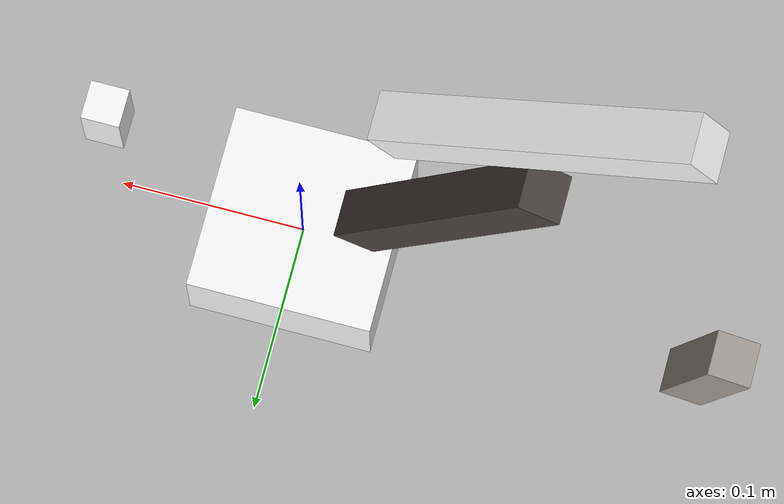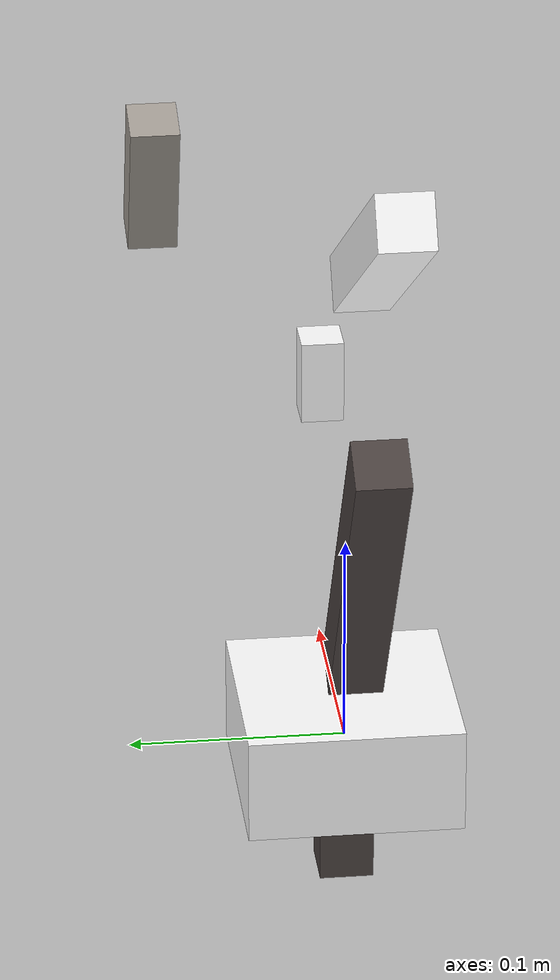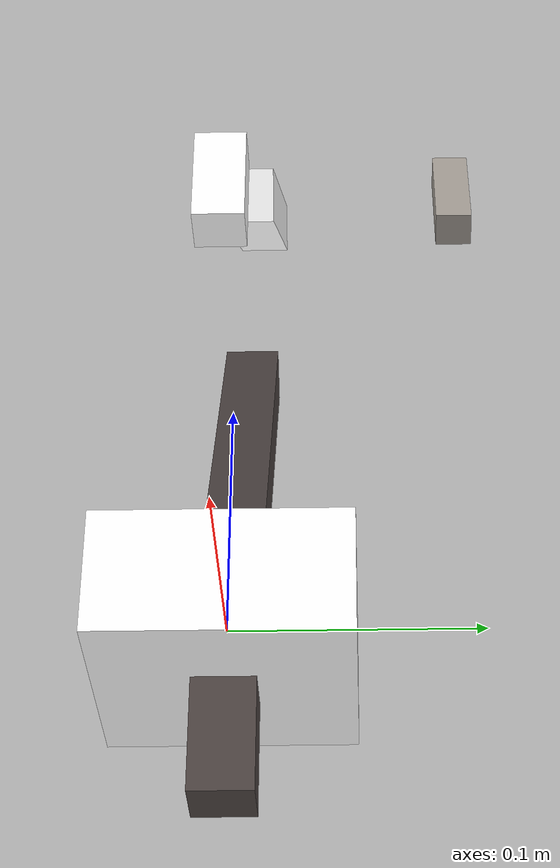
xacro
<?xml version="1.0"?>
<robot name="rc_arm_2" xmlns:xacro="http://www.ros.org/wiki/xacro">

  <xacro:arg name="use_mock_hardware" default="false"/>
  <xacro:arg name="hardware_config_file" default="$(find rc_arm_description)/config/rc_arm_2/rc_arm_2_hardware.real.yaml"/>

  <xacro:include filename="rc_arm_2_ros2_control.xacro"/>

  <material name="dark_gray">
    <color rgba="0.294117647058824 0.258823529411765 0.250980392156863 1.0"/>
  </material>
  <material name="light_gray">
    <color rgba="1.0 1.0 1.0 1.0"/>
  </material>
  <material name="d435_gray">
    <color rgba="0.64706 0.61961 0.58824 1.0"/>
  </material>

  <!-- Simplified cue-stick geometry for faster loading and lighter self-collision. -->
  <xacro:property name="base_size" value="0.10 0.10 0.05"/>
  <xacro:property name="l1_size" value="0.025 0.025 0.07"/>
  <xacro:property name="l2_size" value="0.025 0.025 0.18"/>
  <xacro:property name="l3_size" value="0.18 0.025 0.025"/>
  <xacro:property name="l4_size" value="0.04 0.02 0.02"/>
  <xacro:property name="camera_visual_size" value="0.06 0.02 0.02"/>

  <link name="world"/>

  <joint name="world_to_base_link" type="fixed">
    <origin xyz="0 0 0" rpy="0 0 0"/>
    <parent link="world"/>
    <child link="base_link"/>
  </joint>

  <link name="base_link">
    <inertial>
      <origin xyz="-0.00441433736643499 -0.0432311956776563 -0.068308183900563" rpy="0 0 0"/>
      <mass value="0.72407291102659"/>
      <inertia
        ixx="0.000998899624008477"
        ixy="-3.86015725416923E-05"
        ixz="-2.77589357014807E-10"
        iyy="0.000692512396214957"
        iyz="-8.20453007076033E-08"
        izz="0.00166922984591189"/>
    </inertial>
    <visual>
      <origin xyz="0 0 0" rpy="0 0 0"/>
      <geometry>
        <box size="${base_size}"/>
      </geometry>
      <material name="light_gray"/>
    </visual>
    <collision>
      <origin xyz="0 0 -0.01" rpy="0 0 0"/>
      <geometry>
        <box size="${base_size}"/>
      </geometry>
    </collision>
  </link>

  <link name="l1">
    <inertial>
      <origin xyz="-0.00222237166108684 0.00885087067187082 -0.0317916897635089" rpy="0 0 0"/>
      <mass value="0.52431151622391"/>
      <inertia
        ixx="0.000370535471565083"
        ixy="-8.73479144461298E-07"
        ixz="5.75460544520931E-06"
        iyy="0.000514553128486087"
        iyz="-7.95196928215877E-08"
        izz="0.000529861347394945"/>
    </inertial>
    <visual>
      <origin xyz="0 0 -0.035" rpy="0 0 0"/>
      <geometry>
        <box size="${l1_size}"/>
      </geometry>
      <material name="dark_gray"/>
    </visual>
    <collision>
      <origin xyz="0 0 -0.035" rpy="0 0 0"/>
      <geometry>
        <box size="${l1_size}"/>
      </geometry>
    </collision>
  </link>

  <joint name="j1_joint" type="revolute">
    <origin xyz="0 0 0" rpy="0 0 0"/>
    <parent link="base_link"/>
    <child link="l1"/>
    <axis xyz="0 0 -1"/>
    <limit lower="-3.1416" upper="3.1416" effort="14.0" velocity="12.0"/>
  </joint>

  <link name="l2">
    <inertial>
      <origin xyz="-0.00307167634317969 0.00830900318964806 0.19079096260025" rpy="0 0 0"/>
      <mass value="0.805789127434329"/>
      <inertia
        ixx="0.00501805334459747"
        ixy="1.62680727626169E-06"
        ixz="-1.2217709768696E-05"
        iyy="0.00513993794775083"
        iyz="-2.16203064804181E-05"
        izz="0.000226026483229217"/>
    </inertial>
    <visual>
      <origin xyz="0 0 0.15" rpy="0 0 0"/>
      <geometry>
        <box size="${l2_size}"/>
      </geometry>
      <material name="dark_gray"/>
    </visual>
    <collision>
      <origin xyz="0 0 0.15" rpy="0 0 0"/>
      <geometry>
        <box size="${l2_size}"/>
      </geometry>
    </collision>
  </link>

  <joint name="j2_joint" type="revolute">
    <origin xyz="0 0 0" rpy="0 -0.549778714378223 0"/>
    <parent link="l1"/>
    <child link="l2"/>
    <axis xyz="0 -1 0"/>
    <limit lower="-1.8586" upper="0.0" effort="14.0" velocity="12.0"/>
  </joint>

  <link name="l3">
    <inertial>
      <origin xyz="0.187860682821295 0.000714874382660379 -0.000410190060658594" rpy="0 0 0"/>
      <mass value="0.475080482114449"/>
      <inertia
        ixx="0.000108426112879256"
        ixy="1.05495989102581E-06"
        ixz="9.45702709656538E-07"
        iyy="0.000847092409319451"
        iyz="-4.27029906629534E-08"
        izz="0.000853139815278739"/>
    </inertial>
    <visual>
      <origin xyz="0.13 0 0" rpy="0 0 0"/>
      <geometry>
        <box size="${l3_size}"/>
      </geometry>
      <material name="light_gray"/>
    </visual>
    <collision>
      <origin xyz="0.13 0 0" rpy="0 0 0"/>
      <geometry>
        <box size="${l3_size}"/>
      </geometry>
    </collision>
  </link>

  <joint name="j3_joint" type="revolute">
    <origin xyz="0 0 0.44" rpy="0 1.1345 0"/>
    <parent link="l2"/>
    <child link="l3"/>
    <axis xyz="0 -1 0"/>
    <limit lower="0.0" upper="2.2689" effort="14.0" velocity="12.0"/>
  </joint>

  <link name="l4">
    <inertial>
      <origin xyz="0.0162773246607396 -0.00280743297355511 0.0122653945348589" rpy="0 0 0"/>
      <mass value="0.0966784318090299"/>
      <inertia
        ixx="1.44622211990179E-05"
        ixy="1.98448618650059E-10"
        ixz="-4.87127671370866E-07"
        iyy="1.45392433584464E-05"
        iyz="3.43930662788767E-12"
        izz="5.53662467279481E-06"/>
    </inertial>
    <visual>
      <origin xyz="0.02 0 0" rpy="0 0 0"/>
      <geometry>
        <box size="${l4_size}"/>
      </geometry>
      <material name="light_gray"/>
    </visual>
    <collision>
      <origin xyz="0.02 0 0" rpy="0 0 0"/>
      <geometry>
        <box size="${l4_size}"/>
      </geometry>
    </collision>
  </link>

  <joint name="j4_joint" type="revolute">
    <origin xyz="0.395 0 0" rpy="0 0.9861063268 0"/>
    <parent link="l3"/>
    <child link="l4"/>
    <axis xyz="0 1 0"/>
    <limit lower="-3.1416" upper="3.1416" effort="6.0" velocity="20.0"/>
  </joint>

  <link name="end_effector"/>

  <joint name="l4_to_end_effector" type="fixed">
    <parent link="l4"/>
    <child link="end_effector"/>
    <origin xyz="0.04 0 0.0175" rpy="0 0 0"/>
  </joint>

  <link name="camera_d435_link">
    <inertial>
      <origin xyz="-0.018635 0.0077196 -0.017946" rpy="0 0 0"/>
      <mass value="0.07123"/>
      <inertia
        ixx="1.2039E-05"
        ixy="6.1017E-07"
        ixz="1.0854E-06"
        iyy="3.3258E-05"
        iyz="-4.841E-07"
        izz="4.1072E-05"/>
    </inertial>
    <visual>
      <origin xyz="0 0 0" rpy="0 0 0"/>
      <geometry>
        <box size="${camera_visual_size}"/>
      </geometry>
      <material name="d435_gray"/>
    </visual>
  </link>

  <joint name="l2_to_camera_d435" type="fixed">
    <origin xyz="0.01648 0.1068 0.44728" rpy="3.1416 -1.315 0"/>
    <parent link="l2"/>
    <child link="camera_d435_link"/>
  </joint>

  <link name="camera_d435_optical_frame"/>

  <joint name="camera_d435_link_to_optical_frame" type="fixed">
    <!-- Placeholder optical frame; verify against the RealSense driver TF before using camera data. -->
    <origin xyz="-0.01 0 0" rpy="0 0 0"/>
    <parent link="camera_d435_link"/>
    <child link="camera_d435_optical_frame"/>
  </joint>

  <xacro:rc_arm_2_ros2_control
    use_mock_hardware="$(arg use_mock_hardware)"
    hardware_config_file="$(arg hardware_config_file)"/>

</robot>
